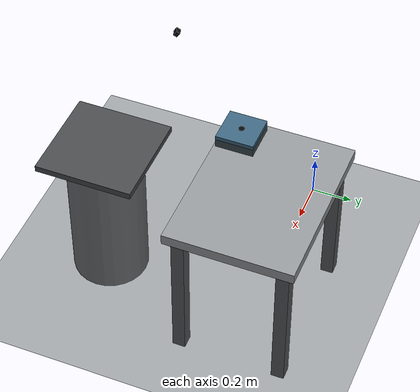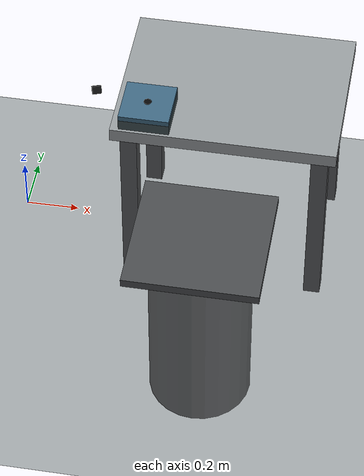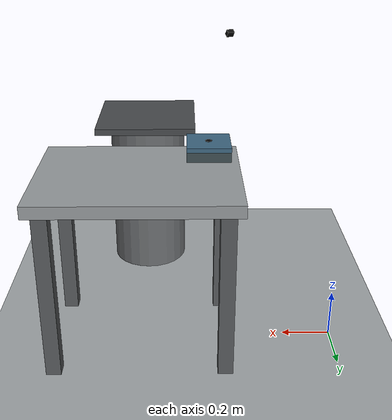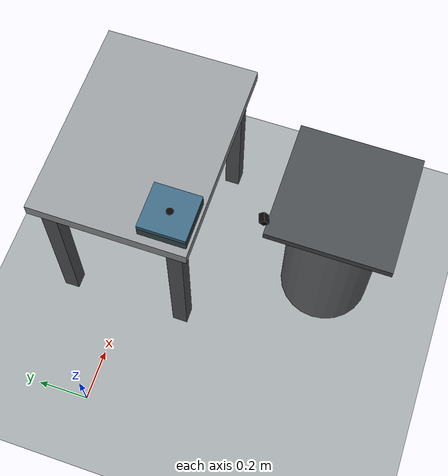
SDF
<?xml version="1.0"?>
<sdf version="1.9">
  <world name="peg_in_hole_world">
    <physics name="1ms" type="ignored">
      <max_step_size>0.001</max_step_size>
      <real_time_factor>1.0</real_time_factor>
      <real_time_update_rate>1000</real_time_update_rate>
    </physics>

    <plugin name="gz::sim::systems::Physics" filename="ignition-gazebo-physics-system"/>
    <plugin name="gz::sim::systems::UserCommands" filename="ignition-gazebo-user-commands-system"/>
    <plugin name="gz::sim::systems::SceneBroadcaster" filename="ignition-gazebo-scene-broadcaster-system"/>
    <plugin name="gz::sim::systems::Contact" filename="ignition-gazebo-contact-system"/>
    <plugin name="gz::sim::systems::Sensors" filename="ignition-gazebo-sensors-system">
      <render_engine>ogre</render_engine>
    </plugin>
    <plugin name="gz::sim::systems::ForceTorque" filename="gz-sim8-forcetorque-system"/>

    <gravity>0 0 -9.81</gravity>
    <magnetic_field>6.0e-6 2.3e-5 -4.2e-5</magnetic_field>
    <atmosphere type="adiabatic"/>

    <scene>
      <ambient>0.45 0.45 0.45 1</ambient>
      <background>0.72 0.74 0.76 1</background>
      <shadows>true</shadows>
    </scene>

    <model name="ground_plane">
      <static>true</static>
      <link name="link">
        <collision name="collision">
          <geometry><plane><normal>0 0 1</normal><size>20 20</size></plane></geometry>
        </collision>
        <visual name="visual">
          <geometry><plane><normal>0 0 1</normal><size>20 20</size></plane></geometry>
          <material>
            <ambient>0.55 0.57 0.58 1</ambient>
            <diffuse>0.62 0.64 0.65 1</diffuse>
          </material>
        </visual>
      </link>
    </model>

    <include>
      <name>work_table</name>
      <uri>model://work_table</uri>
      <pose>0.80 0 0 0 0 0</pose>
    </include>

    <!-- Static 0.75 m pedestal under the KUKA base for the research baseline. -->
    <include>
      <name>robot_pedestal</name>
      <uri>model://robot_pedestal</uri>
      <pose>0.80 -0.75 0.0 0 0 0</pose>
    </include>

    <!-- Fixture base sits on the 0.75 m table surface and is 40 mm tall. -->
    <include>
      <name>hole_fixture</name>
      <uri>model://hole_fixture</uri>
      <pose>0.52 -0.20 0.75 0 0 0</pose>
    </include>

    <!-- Target plate sits on top of the fixture: z=0.79 m bottom, z=0.81 m top. -->
    <include>
      <name>target_plate</name>
      <uri>model://target_plate</uri>
      <pose>0.52 -0.20 0.79 0 0 0</pose>
    </include>

    <light name="key_area_light" type="point">
      <pose>0.20 -0.60 1.80 0 0 0</pose>
      <cast_shadows>true</cast_shadows>
      <intensity>1.4</intensity>
      <diffuse>0.95 0.95 0.90 1</diffuse>
      <specular>0.35 0.35 0.35 1</specular>
      <attenuation>
        <range>5.0</range>
        <constant>0.6</constant>
        <linear>0.15</linear>
        <quadratic>0.02</quadratic>
      </attenuation>
    </light>

    <!-- Intel RealSense D405 RGB-D camera, world-fixed, aimed at the peg-in-hole workspace. -->
    <model name="d405_rgbd_camera">
      <static>true</static>
      <pose>0.42 -0.55 1.18 0.95 0 0.35</pose>
      <link name="camera_link">
        <visual name="camera_visual">
          <geometry>
            <box>
              <size>0.03 0.025 0.02</size>
            </box>
          </geometry>
          <material>
            <ambient>0.03 0.03 0.03 1</ambient>
            <diffuse>0.05 0.05 0.05 1</diffuse>
          </material>
        </visual>
        <sensor name="d405_color" type="camera">
          <always_on>true</always_on>
          <update_rate>30</update_rate>
          <topic>/d405/color/image_raw</topic>
          <camera>
            <horizontal_fov>1.22</horizontal_fov>
            <image>
              <width>848</width>
              <height>480</height>
              <format>R8G8B8</format>
            </image>
            <clip>
              <near>0.07</near>
              <far>2.0</far>
            </clip>
          </camera>
        </sensor>
        <sensor name="d405_depth" type="depth_camera">
          <always_on>true</always_on>
          <update_rate>30</update_rate>
          <topic>/d405/depth/image_rect_raw</topic>
          <camera>
            <horizontal_fov>1.22</horizontal_fov>
            <image>
              <width>848</width>
              <height>480</height>
              <format>R_FLOAT32</format>
            </image>
            <clip>
              <near>0.07</near>
              <far>2.0</far>
            </clip>
          </camera>
        </sensor>
      </link>
    </model>

    <light name="sun" type="directional">
      <pose>0 0 10 0 0 0</pose>
      <cast_shadows>true</cast_shadows>
      <intensity>0.8</intensity>
      <direction>-0.4 0.2 -0.9</direction>
      <diffuse>0.80 0.82 0.85 1</diffuse>
      <specular>0.20 0.20 0.20 1</specular>
    </light>
  </world>
</sdf>

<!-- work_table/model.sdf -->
<sdf version="1.9">
  <model name="work_table">
    <static>true</static>
    <link name="table_link">
      <!-- Research-cell bench: 0.80 m x 0.60 m top, 0.05 m thick, with a 0.75 m work surface. -->
      <collision name="table_collision">
        <pose>0 0 0.725 0 0 0</pose>
        <geometry><box><size>0.80 0.60 0.05</size></box></geometry>
        <surface>
          <friction><ode><mu>0.8</mu><mu2>0.8</mu2></ode></friction>
        </surface>
      </collision>
      <visual name="tabletop_visual">
        <pose>0 0 0.725 0 0 0</pose>
        <geometry><box><size>0.80 0.60 0.05</size></box></geometry>
        <material>
          <ambient>0.45 0.47 0.48 1</ambient>
          <diffuse>0.58 0.60 0.61 1</diffuse>
          <specular>0.15 0.15 0.15 1</specular>
        </material>
      </visual>

      <collision name="leg_front_left_collision">
        <pose>0.34 0.24 0.35 0 0 0</pose>
        <geometry><box><size>0.06 0.06 0.70</size></box></geometry>
      </collision>
      <visual name="leg_front_left_visual">
        <pose>0.34 0.24 0.35 0 0 0</pose>
        <geometry><box><size>0.06 0.06 0.70</size></box></geometry>
        <material><ambient>0.28 0.29 0.30 1</ambient><diffuse>0.34 0.35 0.36 1</diffuse></material>
      </visual>

      <collision name="leg_front_right_collision">
        <pose>0.34 -0.24 0.35 0 0 0</pose>
        <geometry><box><size>0.06 0.06 0.70</size></box></geometry>
      </collision>
      <visual name="leg_front_right_visual">
        <pose>0.34 -0.24 0.35 0 0 0</pose>
        <geometry><box><size>0.06 0.06 0.70</size></box></geometry>
        <material><ambient>0.28 0.29 0.30 1</ambient><diffuse>0.34 0.35 0.36 1</diffuse></material>
      </visual>

      <collision name="leg_rear_left_collision">
        <pose>-0.34 0.24 0.35 0 0 0</pose>
        <geometry><box><size>0.06 0.06 0.70</size></box></geometry>
      </collision>
      <visual name="leg_rear_left_visual">
        <pose>-0.34 0.24 0.35 0 0 0</pose>
        <geometry><box><size>0.06 0.06 0.70</size></box></geometry>
        <material><ambient>0.28 0.29 0.30 1</ambient><diffuse>0.34 0.35 0.36 1</diffuse></material>
      </visual>

      <collision name="leg_rear_right_collision">
        <pose>-0.34 -0.24 0.35 0 0 0</pose>
        <geometry><box><size>0.06 0.06 0.70</size></box></geometry>
      </collision>
      <visual name="leg_rear_right_visual">
        <pose>-0.34 -0.24 0.35 0 0 0</pose>
        <geometry><box><size>0.06 0.06 0.70</size></box></geometry>
        <material><ambient>0.28 0.29 0.30 1</ambient><diffuse>0.34 0.35 0.36 1</diffuse></material>
      </visual>
    </link>
  </model>
</sdf>

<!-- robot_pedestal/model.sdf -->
<sdf version="1.9">
  <model name="robot_pedestal">
    <static>true</static>
    <link name="pedestal_link">
      <!-- 0.75 m static stand: its top supports the KUKA base at table-surface height. -->
      <collision name="column_collision">
        <pose>0 0 0.36 0 0 0</pose>
        <geometry>
          <cylinder>
            <radius>0.18</radius>
            <length>0.72</length>
          </cylinder>
        </geometry>
        <surface>
          <friction><ode><mu>0.9</mu><mu2>0.9</mu2></ode></friction>
        </surface>
      </collision>
      <visual name="column_visual">
        <pose>0 0 0.36 0 0 0</pose>
        <geometry>
          <cylinder>
            <radius>0.18</radius>
            <length>0.72</length>
          </cylinder>
        </geometry>
        <material>
          <ambient>0.30 0.31 0.32 1</ambient>
          <diffuse>0.42 0.43 0.44 1</diffuse>
          <specular>0.20 0.20 0.20 1</specular>
        </material>
      </visual>

      <collision name="top_plate_collision">
        <pose>0 0 0.735 0 0 0</pose>
        <geometry><box><size>0.46 0.46 0.03</size></box></geometry>
      </collision>
      <visual name="top_plate_visual">
        <pose>0 0 0.735 0 0 0</pose>
        <geometry><box><size>0.46 0.46 0.03</size></box></geometry>
        <material>
          <ambient>0.20 0.21 0.22 1</ambient>
          <diffuse>0.28 0.29 0.30 1</diffuse>
          <specular>0.25 0.25 0.25 1</specular>
        </material>
      </visual>
    </link>
  </model>
</sdf>

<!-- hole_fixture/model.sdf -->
<sdf version="1.9">
  <model name="hole_fixture">
    <static>true</static>
    <link name="fixture_link">
      <!-- Low 180 mm square nest placed directly on the table; the central opening clears the 27 mm hole marker. -->
      <pose>0 0 0.02 0 0 0</pose>
      <collision name="hole_fixture_collision">
        <pose>0 0.054 0 0 0 0</pose>
        <geometry><box><size>0.18 0.072 0.04</size></box></geometry>
      </collision>
      <collision name="fixture_rear_collision">
        <pose>0 -0.054 0 0 0 0</pose>
        <geometry><box><size>0.18 0.072 0.04</size></box></geometry>
      </collision>
      <collision name="fixture_left_collision">
        <pose>-0.054 0 0 0 0 0</pose>
        <geometry><box><size>0.072 0.036 0.04</size></box></geometry>
      </collision>
      <collision name="fixture_right_collision">
        <pose>0.054 0 0 0 0 0</pose>
        <geometry><box><size>0.072 0.036 0.04</size></box></geometry>
      </collision>
      <sensor name="hole_contact_sensor" type="contact">
        <always_on>true</always_on>
        <update_rate>100.0</update_rate>
        <topic>/gazebo/contacts/hole</topic>
        <contact>
          <collision>hole_fixture_collision</collision>
          <collision>fixture_rear_collision</collision>
          <collision>fixture_left_collision</collision>
          <collision>fixture_right_collision</collision>
        </contact>
      </sensor>
      <visual name="fixture_visual">
        <geometry><box><size>0.18 0.18 0.04</size></box></geometry>
        <material>
          <ambient>0.18 0.22 0.24 1</ambient>
          <diffuse>0.24 0.30 0.32 1</diffuse>
          <specular>0.20 0.22 0.22 1</specular>
        </material>
      </visual>
      <visual name="fixture_socket_visual">
        <pose>0 0 0.021 0 0 0</pose>
        <geometry><cylinder><radius>0.0135</radius><length>0.004</length></cylinder></geometry>
        <material>
          <ambient>0.02 0.02 0.02 1</ambient>
          <diffuse>0.03 0.03 0.03 1</diffuse>
        </material>
      </visual>
    </link>
  </model>
</sdf>

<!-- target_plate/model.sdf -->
<sdf version="1.9">
  <model name="target_plate">
    <static>true</static>
    <link name="plate_link">
      <!-- 180 mm square, 20 mm thick target plate with a 27 mm nominal hole for a 25 mm peg. -->
      <pose>0 0 0.01 0 0 0</pose>

      <collision name="target_plate_collision">
        <pose>0 0.054 0 0 0 0</pose>
        <geometry><box><size>0.18 0.072 0.02</size></box></geometry>
      </collision>
      <collision name="plate_rear_collision">
        <pose>0 -0.054 0 0 0 0</pose>
        <geometry><box><size>0.18 0.072 0.02</size></box></geometry>
      </collision>
      <collision name="plate_left_collision">
        <pose>-0.054 0 0 0 0 0</pose>
        <geometry><box><size>0.072 0.036 0.02</size></box></geometry>
      </collision>
      <collision name="plate_right_collision">
        <pose>0.054 0 0 0 0 0</pose>
        <geometry><box><size>0.072 0.036 0.02</size></box></geometry>
      </collision>
      <sensor name="target_contact_sensor" type="contact">
        <always_on>true</always_on>
        <update_rate>100.0</update_rate>
        <topic>/gazebo/contacts/target</topic>
        <contact>
          <collision>target_plate_collision</collision>
          <collision>plate_rear_collision</collision>
          <collision>plate_left_collision</collision>
          <collision>plate_right_collision</collision>
        </contact>
      </sensor>

      <visual name="plate_visual">
        <geometry><box><size>0.18 0.18 0.02</size></box></geometry>
        <material>
          <ambient>0.18 0.28 0.36 1</ambient>
          <diffuse>0.24 0.40 0.50 1</diffuse>
          <specular>0.25 0.25 0.25 1</specular>
        </material>
      </visual>
      <visual name="hole_opening_visual">
        <pose>0 0 0.0105 0 0 0</pose>
        <geometry><cylinder><radius>0.0135</radius><length>0.003</length></cylinder></geometry>
        <material>
          <ambient>0.01 0.01 0.01 1</ambient>
          <diffuse>0.02 0.02 0.02 1</diffuse>
        </material>
      </visual>
    </link>
  </model>
</sdf>
